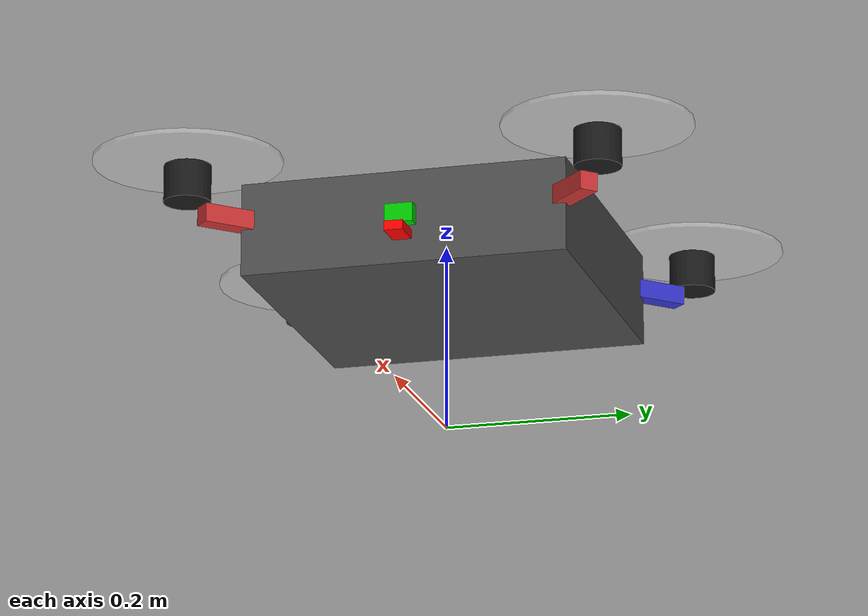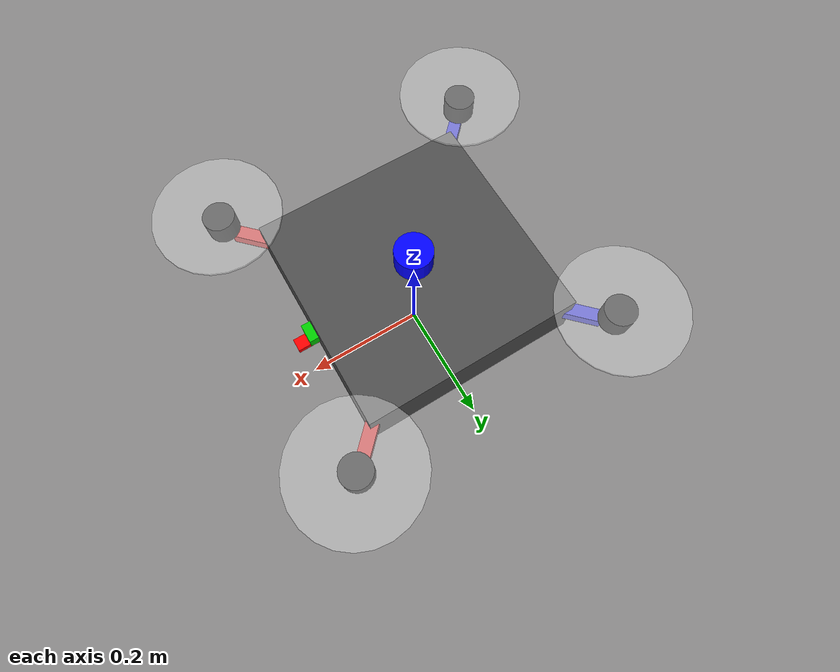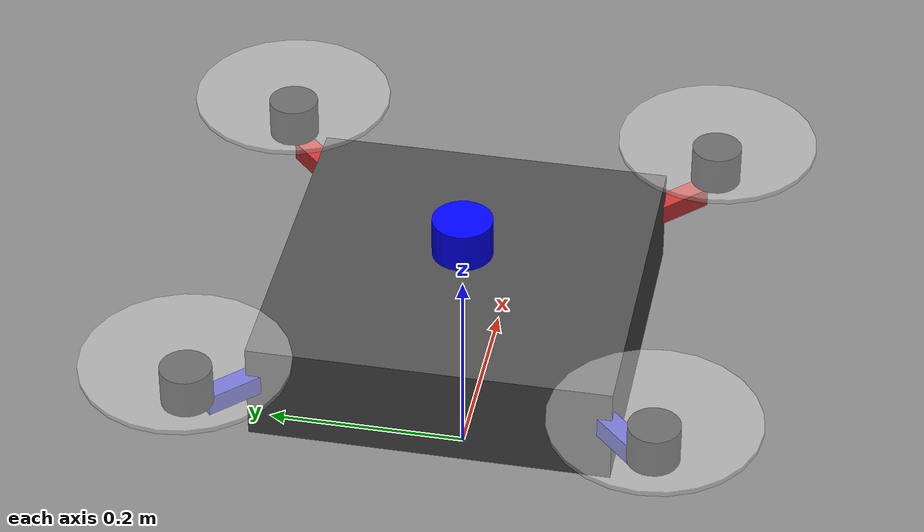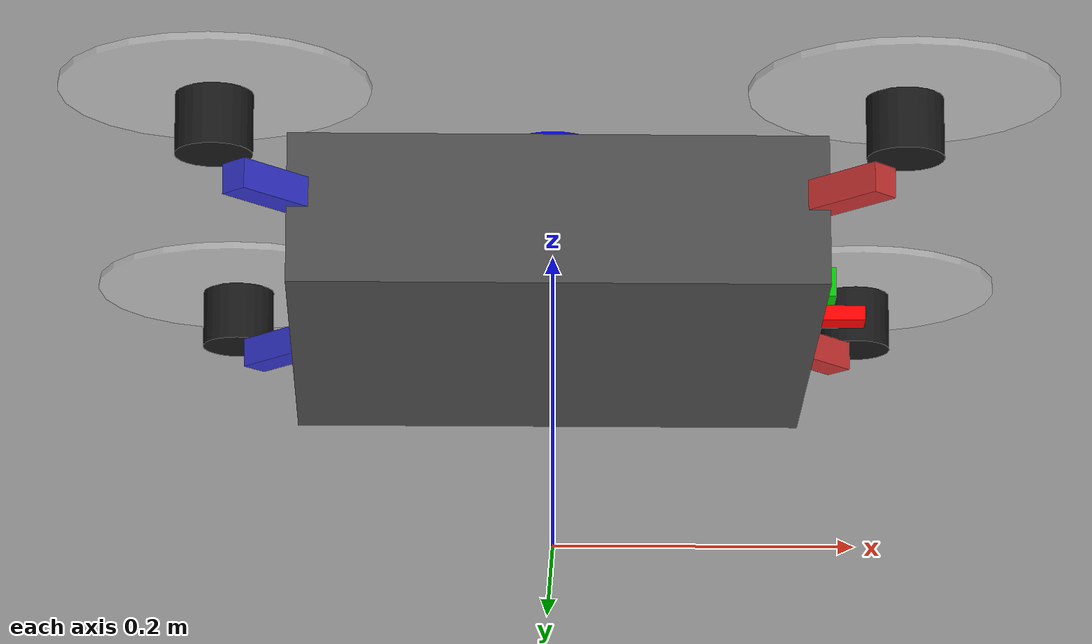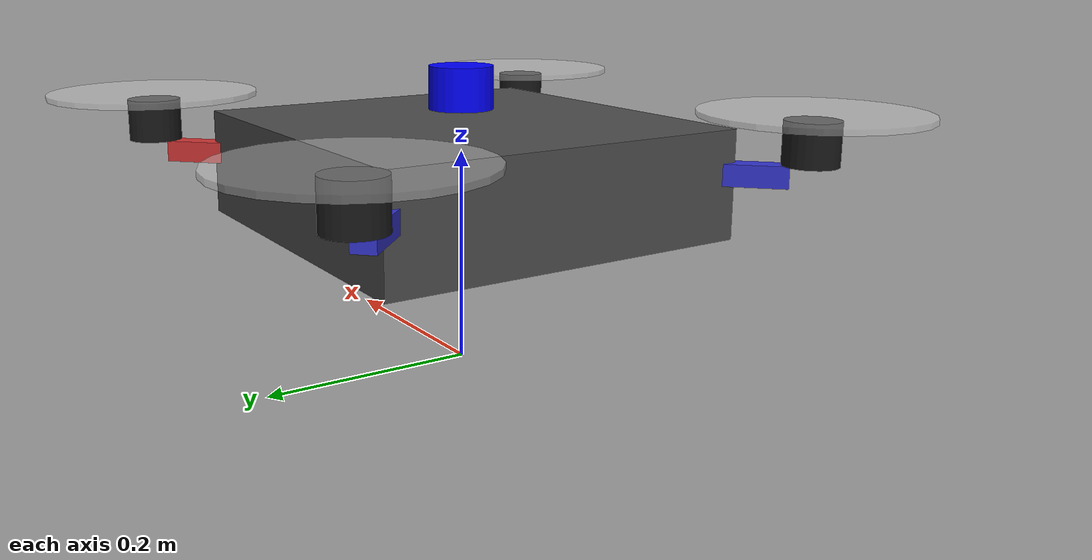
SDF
<?xml version="1.0" ?>
<sdf version="1.9">
  <model name="simple_drone">
    <pose>0 0 0.18 0 0 0</pose>

    <!-- ══════════════════════════════════════════════
         ANA GÖVDE (body)
         ══════════════════════════════════════════════ -->
    <link name="base_link">
      <inertial>
        <mass>1.5</mass>
        <inertia>
          <ixx>0.029125</ixx>
          <ixy>0</ixy>
          <ixz>0</ixz>
          <iyy>0.029125</iyy>
          <iyz>0</iyz>
          <izz>0.055225</izz>
        </inertia>
      </inertial>

      <!-- Gövde collision -->
      <collision name="body_collision">
        <geometry>
          <box><size>0.35 0.35 0.10</size></box>
        </geometry>
      </collision>

      <!-- Gövde visual - ana kutu -->
      <visual name="body_visual">
        <geometry>
          <box><size>0.35 0.35 0.10</size></box>
        </geometry>
        <material>
          <ambient>0.2 0.2 0.2 1</ambient>
          <diffuse>0.3 0.3 0.3 1</diffuse>
          <specular>0.5 0.5 0.5 1</specular>
        </material>
      </visual>

      <!-- ── KOL 1: Sağ-ön (+X, +Y) ── -->
      <visual name="arm_front_right">
        <pose>0.13 -0.13 0.01 0 0 -0.785</pose>
        <geometry>
          <box><size>0.22 0.02 0.02</size></box>
        </geometry>
        <material>
          <ambient>0.6 0.1 0.1 1</ambient>
          <diffuse>0.8 0.2 0.2 1</diffuse>
        </material>
      </visual>

      <!-- ── KOL 2: Sol-ön (+X, -Y) ── -->
      <visual name="arm_front_left">
        <pose>0.13 0.13 0.01 0 0 0.785</pose>
        <geometry>
          <box><size>0.22 0.02 0.02</size></box>
        </geometry>
        <material>
          <ambient>0.6 0.1 0.1 1</ambient>
          <diffuse>0.8 0.2 0.2 1</diffuse>
        </material>
      </visual>

      <!-- ── KOL 3: Sağ-arka (-X, +Y) ── -->
      <visual name="arm_rear_right">
        <pose>-0.13 -0.13 0.01 0 0 0.785</pose>
        <geometry>
          <box><size>0.22 0.02 0.02</size></box>
        </geometry>
        <material>
          <ambient>0.1 0.1 0.6 1</ambient>
          <diffuse>0.2 0.2 0.8 1</diffuse>
        </material>
      </visual>

      <!-- ── KOL 4: Sol-arka (-X, -Y) ── -->
      <visual name="arm_rear_left">
        <pose>-0.13 0.13 0.01 0 0 -0.785</pose>
        <geometry>
          <box><size>0.22 0.02 0.02</size></box>
        </geometry>
        <material>
          <ambient>0.1 0.1 0.6 1</ambient>
          <diffuse>0.2 0.2 0.8 1</diffuse>
        </material>
      </visual>

      <!-- ── Motor kapakları (4 silindir) ── -->
      <visual name="motor_fr">
        <pose>0.22 -0.22 0.04 0 0 0</pose>
        <geometry><cylinder><radius>0.025</radius><length>0.04</length></cylinder></geometry>
        <material><diffuse>0.1 0.1 0.1 1</diffuse></material>
      </visual>
      <visual name="motor_fl">
        <pose>0.22 0.22 0.04 0 0 0</pose>
        <geometry><cylinder><radius>0.025</radius><length>0.04</length></cylinder></geometry>
        <material><diffuse>0.1 0.1 0.1 1</diffuse></material>
      </visual>
      <visual name="motor_rr">
        <pose>-0.22 -0.22 0.04 0 0 0</pose>
        <geometry><cylinder><radius>0.025</radius><length>0.04</length></cylinder></geometry>
        <material><diffuse>0.1 0.1 0.1 1</diffuse></material>
      </visual>
      <visual name="motor_rl">
        <pose>-0.22 0.22 0.04 0 0 0</pose>
        <geometry><cylinder><radius>0.025</radius><length>0.04</length></cylinder></geometry>
        <material><diffuse>0.1 0.1 0.1 1</diffuse></material>
      </visual>

      <!-- ── Pervane diskleri (dönen pervane temsili) ── -->
      <visual name="prop_fr">
        <pose>0.22 -0.22 0.065 0 0 0</pose>
        <geometry><cylinder><radius>0.1</radius><length>0.005</length></cylinder></geometry>
        <material><ambient>0.8 0.8 0.8 0.4</ambient><diffuse>0.9 0.9 0.9 0.4</diffuse></material>
      </visual>
      <visual name="prop_fl">
        <pose>0.22 0.22 0.065 0 0 0</pose>
        <geometry><cylinder><radius>0.1</radius><length>0.005</length></cylinder></geometry>
        <material><ambient>0.8 0.8 0.8 0.4</ambient><diffuse>0.9 0.9 0.9 0.4</diffuse></material>
      </visual>
      <visual name="prop_rr">
        <pose>-0.22 -0.22 0.065 0 0 0</pose>
        <geometry><cylinder><radius>0.1</radius><length>0.005</length></cylinder></geometry>
        <material><ambient>0.8 0.8 0.8 0.4</ambient><diffuse>0.9 0.9 0.9 0.4</diffuse></material>
      </visual>
      <visual name="prop_rl">
        <pose>-0.22 0.22 0.065 0 0 0</pose>
        <geometry><cylinder><radius>0.1</radius><length>0.005</length></cylinder></geometry>
        <material><ambient>0.8 0.8 0.8 0.4</ambient><diffuse>0.9 0.9 0.9 0.4</diffuse></material>
      </visual>

      <!-- ── Yön göstergesi (ön taraf - kırmızı ok) ── -->
      <visual name="front_indicator">
        <pose>0.18 0 -0.02 0 0 0</pose>
        <geometry>
          <box><size>0.06 0.02 0.01</size></box>
        </geometry>
        <material>
          <ambient>1 0 0 1</ambient>
          <diffuse>1 0 0 1</diffuse>
        </material>
      </visual>

      <!-- ══════════════════════════════════════════════
           SENSÖRLER
           ══════════════════════════════════════════════ -->

      <!-- ── 3D LiDAR (üstte, 360° tarama) ── -->
      <sensor name="lidar_3d" type="gpu_lidar">
        <pose>0 0 0.08 0 0 0</pose>
        <always_on>true</always_on>
        <update_rate>10</update_rate>
        <topic>lidar/points</topic>
        <visualize>true</visualize>
        <ray>
          <scan>
            <horizontal>
              <samples>360</samples>
              <resolution>1</resolution>
              <min_angle>-3.14159</min_angle>
              <max_angle>3.14159</max_angle>
            </horizontal>
            <vertical>
              <samples>16</samples>
              <resolution>1</resolution>
              <min_angle>-0.261799</min_angle>   <!-- -15 derece -->
              <max_angle>0.261799</max_angle>    <!-- +15 derece -->
            </vertical>
          </scan>
          <range>
            <min>0.2</min>
            <max>25.0</max>
            <resolution>0.01</resolution>
          </range>
          <noise>
            <type>gaussian</type>
            <mean>0</mean>
            <stddev>0.005</stddev>
          </noise>
        </ray>
      </sensor>

      <!-- ── LiDAR visual temsili ── -->
      <visual name="lidar_visual">
        <pose>0 0 0.08 0 0 0</pose>
        <geometry><cylinder><radius>0.03</radius><length>0.04</length></cylinder></geometry>
        <material>
          <ambient>0.0 0.0 0.8 1</ambient>
          <diffuse>0.0 0.0 1.0 1</diffuse>
        </material>
      </visual>

      <!-- ── Ön Kamera (kapı numarası tanıma için) ── -->
      <sensor name="front_camera" type="camera">
        <pose>0.18 0 0 0 0 0</pose>
        <always_on>true</always_on>
        <update_rate>15</update_rate>
        <topic>camera</topic>
        <visualize>true</visualize>
        <camera>
          <horizontal_fov>1.3962634</horizontal_fov>  <!-- ~80 derece -->
          <image>
            <width>640</width>
            <height>480</height>
            <format>R8G8B8</format>
          </image>
          <clip>
            <near>0.1</near>
            <far>50</far>
          </clip>
          <noise>
            <type>gaussian</type>
            <mean>0</mean>
            <stddev>0.007</stddev>
          </noise>
        </camera>
      </sensor>

      <!-- ── Kamera visual temsili ── -->
      <visual name="camera_visual">
        <pose>0.18 0 0 0 0 0</pose>
        <geometry><box><size>0.02 0.03 0.02</size></box></geometry>
        <material>
          <ambient>0.0 0.6 0.0 1</ambient>
          <diffuse>0.0 0.8 0.0 1</diffuse>
        </material>
      </visual>

      <!-- ── IMU Sensörü ── -->
      <sensor name="imu_sensor" type="imu">
        <always_on>true</always_on>
        <update_rate>200</update_rate>
        <topic>imu</topic>
        <imu>
          <angular_velocity>
            <x>
              <noise type="gaussian">
                <mean>0</mean>
                <stddev>0.0002</stddev>
              </noise>
            </x>
            <y>
              <noise type="gaussian">
                <mean>0</mean>
                <stddev>0.0002</stddev>
              </noise>
            </y>
            <z>
              <noise type="gaussian">
                <mean>0</mean>
                <stddev>0.0002</stddev>
              </noise>
            </z>
          </angular_velocity>
          <linear_acceleration>
            <x>
              <noise type="gaussian">
                <mean>0</mean>
                <stddev>0.017</stddev>
              </noise>
            </x>
            <y>
              <noise type="gaussian">
                <mean>0</mean>
                <stddev>0.017</stddev>
              </noise>
            </y>
            <z>
              <noise type="gaussian">
                <mean>0</mean>
                <stddev>0.017</stddev>
              </noise>
            </z>
          </linear_acceleration>
        </imu>
      </sensor>

    </link>

    <!-- ══════════════════════════════════════════════
         GAZEBO SYSTEM PLUGINS
         ══════════════════════════════════════════════ -->

    <!-- Pose yayınlama (odometry) -->
    <plugin filename="gz-sim-odometry-publisher-system"
            name="gz::sim::systems::OdometryPublisher">
      <odom_frame>odom</odom_frame>
      <robot_base_frame>base_link</robot_base_frame>
      <odom_topic>odometry</odom_topic>
      <dimensions>3</dimensions>
    </plugin>

    <!-- Pose & Twist ile hareket kontrolü (test için) -->
    <plugin filename="gz-sim-pose-publisher-system"
            name="gz::sim::systems::PosePublisher">
      <publish_link_pose>true</publish_link_pose>
      <publish_nested_model_pose>true</publish_nested_model_pose>
      <use_pose_vector_msg>true</use_pose_vector_msg>
      <update_frequency>50</update_frequency>
    </plugin>

  </model>
</sdf>
